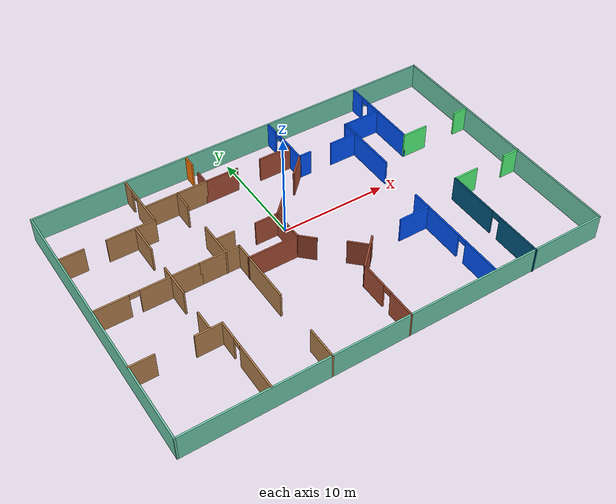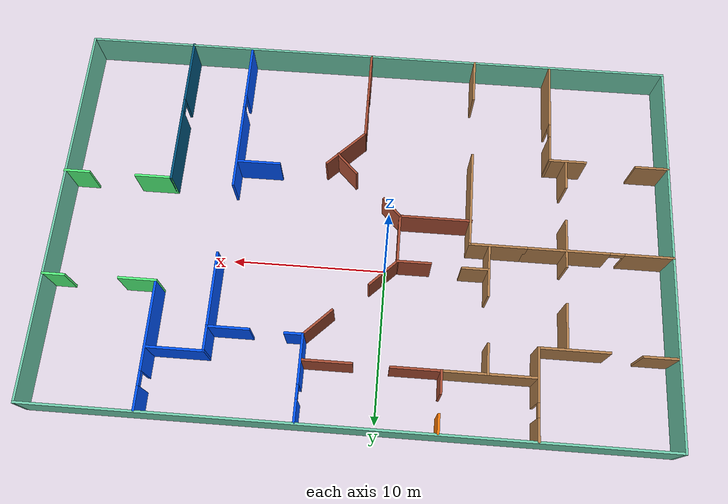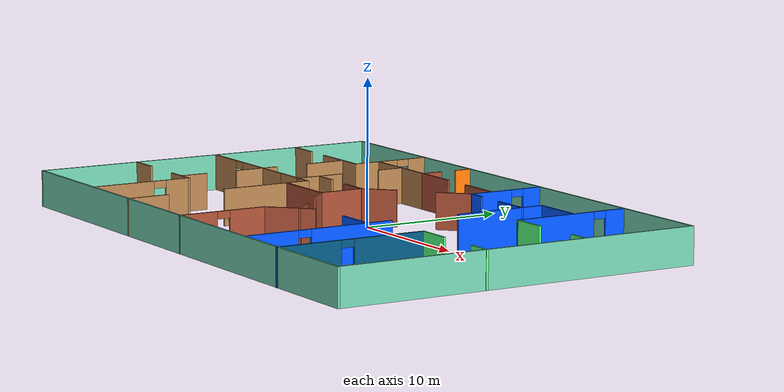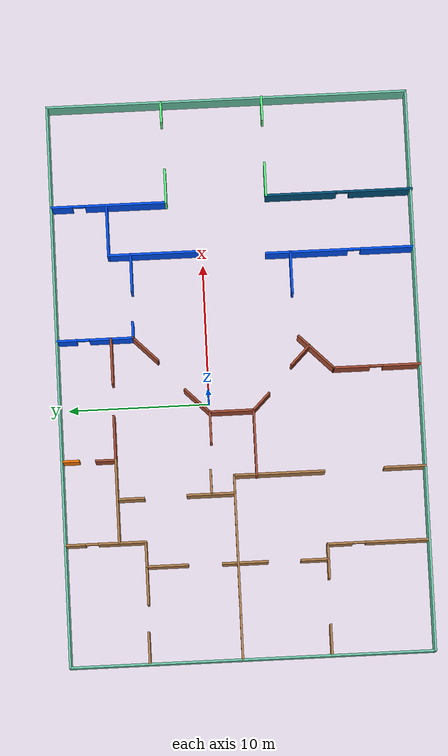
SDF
<?xml version='1.0'?>
<sdf version='1.6'>
  <model name='Building'>
    <pose frame=''>1.66654 -2.25263 0 0 -0 0</pose>
    <link name='Wall_1'>
      <collision name='Wall_1_Collision'>
        <geometry>
          <box>
            <size>40 0.15 2.5</size>
          </box>
        </geometry>
        <pose frame=''>0 0 1.25 0 -0 0</pose>
      </collision>
      <visual name='Wall_1_Visual'>
        <pose frame=''>0 0 1.25 0 -0 0</pose>
        <geometry>
          <box>
            <size>40 0.15 2.5</size>
          </box>
        </geometry>
        <material>
          <script>
            <uri>file://media/materials/scripts/gazebo.material</uri>
            <name>Gazebo/Grey</name>
          </script>
          <ambient>0.435294 0.796078 0.67451 1</ambient>
        </material>
        <meta>
          <layer>0</layer>
        </meta>
      </visual>
      <pose frame=''>-0.022022 12.8298 0 0 -0 0</pose>
    </link>
    <link name='Wall_15'>
      <pose frame=''>-12.1346 -9.16282 0 0 -0 1.5708</pose>
      <visual name='Wall_15_Visual_0'>
        <pose frame=''>-1.36925 0 1.25 0 -0 0</pose>
        <geometry>
          <box>
            <size>4.51149 0.15 2.5</size>
          </box>
        </geometry>
        <material>
          <script>
            <uri>file://media/materials/scripts/gazebo.material</uri>
            <name>Gazebo/Wood</name>
          </script>
          <ambient>1 1 1 1</ambient>
        </material>
        <meta>
          <layer>0</layer>
        </meta>
      </visual>
      <collision name='Wall_15_Collision_0'>
        <geometry>
          <box>
            <size>4.51149 0.15 2.5</size>
          </box>
        </geometry>
        <pose frame=''>-1.36925 0 1.25 0 -0 0</pose>
      </collision>
      <visual name='Wall_15_Visual_1'>
        <pose frame=''>2.70575 0 1.25 0 -0 0</pose>
        <geometry>
          <box>
            <size>1.83851 0.15 2.5</size>
          </box>
        </geometry>
        <material>
          <script>
            <uri>file://media/materials/scripts/gazebo.material</uri>
            <name>Gazebo/Wood</name>
          </script>
          <ambient>1 1 1 1</ambient>
        </material>
        <meta>
          <layer>0</layer>
        </meta>
      </visual>
      <collision name='Wall_15_Collision_1'>
        <geometry>
          <box>
            <size>1.83851 0.15 2.5</size>
          </box>
        </geometry>
        <pose frame=''>2.70575 0 1.25 0 -0 0</pose>
      </collision>
      <visual name='Wall_15_Visual_2'>
        <pose frame=''>1.33649 0 2.25 0 -0 0</pose>
        <geometry>
          <box>
            <size>0.9 0.15 0.5</size>
          </box>
        </geometry>
        <material>
          <script>
            <uri>file://media/materials/scripts/gazebo.material</uri>
            <name>Gazebo/Wood</name>
          </script>
          <ambient>1 1 1 1</ambient>
        </material>
        <meta>
          <layer>0</layer>
        </meta>
      </visual>
      <collision name='Wall_15_Collision_2'>
        <geometry>
          <box>
            <size>0.9 0.15 0.5</size>
          </box>
        </geometry>
        <pose frame=''>1.33649 0 2.25 0 -0 0</pose>
      </collision>
    </link>
    <link name='Wall_16'>
      <collision name='Wall_16_Collision'>
        <geometry>
          <box>
            <size>2.5 0.15 2.5</size>
          </box>
        </geometry>
        <pose frame=''>0 0 1.25 0 -0 0</pose>
      </collision>
      <visual name='Wall_16_Visual'>
        <pose frame=''>0 0 1.25 0 -0 0</pose>
        <geometry>
          <box>
            <size>2.5 0.15 2.5</size>
          </box>
        </geometry>
        <material>
          <script>
            <uri>file://media/materials/scripts/gazebo.material</uri>
            <name>Gazebo/Wood</name>
          </script>
          <ambient>1 1 1 1</ambient>
        </material>
        <meta>
          <layer>0</layer>
        </meta>
      </visual>
      <pose frame=''>-13.3096 -5.61282 0 0 -0 3.14159</pose>
    </link>
    <link name='Wall_18'>
      <collision name='Wall_18_Collision'>
        <geometry>
          <box>
            <size>2.25 0.15 2.5</size>
          </box>
        </geometry>
        <pose frame=''>0 0 1.25 0 -0 0</pose>
      </collision>
      <visual name='Wall_18_Visual'>
        <pose frame=''>0 0 1.25 0 -0 0</pose>
        <geometry>
          <box>
            <size>2.25 0.15 2.5</size>
          </box>
        </geometry>
        <material>
          <script>
            <uri>file://media/materials/scripts/gazebo.material</uri>
            <name>Gazebo/Wood</name>
          </script>
          <ambient>1 1 1 1</ambient>
        </material>
        <meta>
          <layer>0</layer>
        </meta>
      </visual>
      <pose frame=''>-18.8793 -5.52715 0 0 -0 0</pose>
    </link>
    <link name='Wall_2'>
      <collision name='Wall_2_Collision'>
        <geometry>
          <box>
            <size>25.75 0.15 2.5</size>
          </box>
        </geometry>
        <pose frame=''>0 0 1.25 0 -0 0</pose>
      </collision>
      <visual name='Wall_2_Visual'>
        <pose frame=''>0 0 1.25 0 -0 0</pose>
        <geometry>
          <box>
            <size>25.75 0.15 2.5</size>
          </box>
        </geometry>
        <material>
          <script>
            <uri>file://media/materials/scripts/gazebo.material</uri>
            <name>Gazebo/Grey</name>
          </script>
          <ambient>0.435294 0.796078 0.67451 1</ambient>
        </material>
        <meta>
          <layer>0</layer>
        </meta>
      </visual>
      <pose frame=''>19.903 0.029824 0 0 0 -1.5708</pose>
    </link>
    <link name='Wall_20'>
      <collision name='Wall_20_Collision'>
        <geometry>
          <box>
            <size>3 0.15 2.5</size>
          </box>
        </geometry>
        <pose frame=''>0 0 1.25 0 -0 0</pose>
      </collision>
      <visual name='Wall_20_Visual'>
        <pose frame=''>0 0 1.25 0 -0 0</pose>
        <geometry>
          <box>
            <size>3 0.15 2.5</size>
          </box>
        </geometry>
        <material>
          <script>
            <uri>file://media/materials/scripts/gazebo.material</uri>
            <name>Gazebo/Wood</name>
          </script>
          <ambient>1 1 1 1</ambient>
        </material>
        <meta>
          <layer>0</layer>
        </meta>
      </visual>
      <pose frame=''>-13.1276 5.72535 0 0 0 -1.5708</pose>
    </link>
    <link name='Wall_22'>
      <collision name='Wall_22_Collision'>
        <geometry>
          <box>
            <size>2 0.15 2.5</size>
          </box>
        </geometry>
        <pose frame=''>0 0 1.25 0 -0 0</pose>
      </collision>
      <visual name='Wall_22_Visual'>
        <pose frame=''>0 0 1.25 0 -0 0</pose>
        <geometry>
          <box>
            <size>2 0.15 2.5</size>
          </box>
        </geometry>
        <material>
          <script>
            <uri>file://media/materials/scripts/gazebo.material</uri>
            <name>Gazebo/Wood</name>
          </script>
          <ambient>1 1 1 1</ambient>
        </material>
        <meta>
          <layer>0</layer>
        </meta>
      </visual>
      <pose frame=''>-13.1876 -4.66182 0 0 -0 1.5708</pose>
    </link>
    <link name='Wall_24'>
      <pose frame=''>-15.2543 0.737272 0 0 -0 0</pose>
      <visual name='Wall_24_Visual_0'>
        <pose frame=''>-3.16583 0 1.25 0 -0 0</pose>
        <geometry>
          <box>
            <size>3.16833 0.15 2.5</size>
          </box>
        </geometry>
        <material>
          <script>
            <uri>file://media/materials/scripts/gazebo.material</uri>
            <name>Gazebo/Wood</name>
          </script>
          <ambient>1 1 1 1</ambient>
        </material>
        <meta>
          <layer>0</layer>
        </meta>
      </visual>
      <collision name='Wall_24_Collision_0'>
        <geometry>
          <box>
            <size>3.16833 0.15 2.5</size>
          </box>
        </geometry>
        <pose frame=''>-3.16583 0 1.25 0 -0 0</pose>
      </collision>
      <visual name='Wall_24_Visual_1'>
        <pose frame=''>2.03417 0 1.25 0 -0 0</pose>
        <geometry>
          <box>
            <size>5.43166 0.15 2.5</size>
          </box>
        </geometry>
        <material>
          <script>
            <uri>file://media/materials/scripts/gazebo.material</uri>
            <name>Gazebo/Wood</name>
          </script>
          <ambient>1 1 1 1</ambient>
        </material>
        <meta>
          <layer>0</layer>
        </meta>
      </visual>
      <collision name='Wall_24_Collision_1'>
        <geometry>
          <box>
            <size>5.43166 0.15 2.5</size>
          </box>
        </geometry>
        <pose frame=''>2.03417 0 1.25 0 -0 0</pose>
      </collision>
      <visual name='Wall_24_Visual_2'>
        <pose frame=''>-1.13166 0 2.25 0 -0 0</pose>
        <geometry>
          <box>
            <size>0.9 0.15 0.5</size>
          </box>
        </geometry>
        <material>
          <script>
            <uri>file://media/materials/scripts/gazebo.material</uri>
            <name>Gazebo/Wood</name>
          </script>
          <ambient>1 1 1 1</ambient>
        </material>
        <meta>
          <layer>0</layer>
        </meta>
      </visual>
      <collision name='Wall_24_Collision_2'>
        <geometry>
          <box>
            <size>0.9 0.15 0.5</size>
          </box>
        </geometry>
        <pose frame=''>-1.13166 0 2.25 0 -0 0</pose>
      </collision>
    </link>
    <link name='Wall_26'>
      <collision name='Wall_26_Collision'>
        <geometry>
          <box>
            <size>3.25 0.15 2.5</size>
          </box>
        </geometry>
        <pose frame=''>0 0 1.25 0 -0 0</pose>
      </collision>
      <visual name='Wall_26_Visual'>
        <pose frame=''>0 0 1.25 0 -0 0</pose>
        <geometry>
          <box>
            <size>3.25 0.15 2.5</size>
          </box>
        </geometry>
        <material>
          <script>
            <uri>file://media/materials/scripts/gazebo.material</uri>
            <name>Gazebo/Wood</name>
          </script>
          <ambient>1 1 1 1</ambient>
        </material>
        <meta>
          <layer>0</layer>
        </meta>
      </visual>
      <pose frame=''>-13.1573 0.242073 0 0 0 -1.5708</pose>
    </link>
    <link name='Wall_29'>
      <pose frame=''>12.8432 -7.65482 0 0 -0 1.5708</pose>
      <visual name='Wall_29_Visual_0'>
        <pose frame=''>-2.98763 0 1.25 0 -0 0</pose>
        <geometry>
          <box>
            <size>4.52474 0.15 2.5</size>
          </box>
        </geometry>
        <material>
          <script>
            <uri>file://media/materials/scripts/gazebo.material</uri>
            <name>Gazebo/Grey</name>
          </script>
          <ambient>0 0.333333 0.498039 1</ambient>
        </material>
        <meta>
          <layer>0</layer>
        </meta>
      </visual>
      <collision name='Wall_29_Collision_0'>
        <geometry>
          <box>
            <size>4.52474 0.15 2.5</size>
          </box>
        </geometry>
        <pose frame=''>-2.98763 0 1.25 0 -0 0</pose>
      </collision>
      <visual name='Wall_29_Visual_1'>
        <pose frame=''>2.71237 0 1.25 0 -0 0</pose>
        <geometry>
          <box>
            <size>5.07526 0.15 2.5</size>
          </box>
        </geometry>
        <material>
          <script>
            <uri>file://media/materials/scripts/gazebo.material</uri>
            <name>Gazebo/Grey</name>
          </script>
          <ambient>0 0.333333 0.498039 1</ambient>
        </material>
        <meta>
          <layer>0</layer>
        </meta>
      </visual>
      <collision name='Wall_29_Collision_1'>
        <geometry>
          <box>
            <size>5.07526 0.15 2.5</size>
          </box>
        </geometry>
        <pose frame=''>2.71237 0 1.25 0 -0 0</pose>
      </collision>
      <visual name='Wall_29_Visual_2'>
        <pose frame=''>-0.275263 0 2.25 0 -0 0</pose>
        <geometry>
          <box>
            <size>0.9 0.15 0.5</size>
          </box>
        </geometry>
        <material>
          <script>
            <uri>file://media/materials/scripts/gazebo.material</uri>
            <name>Gazebo/Grey</name>
          </script>
          <ambient>0 0.333333 0.498039 1</ambient>
        </material>
        <meta>
          <layer>0</layer>
        </meta>
      </visual>
      <collision name='Wall_29_Collision_2'>
        <geometry>
          <box>
            <size>0.9 0.15 0.5</size>
          </box>
        </geometry>
        <pose frame=''>-0.275263 0 2.25 0 -0 0</pose>
      </collision>
    </link>
    <link name='Wall_3'>
      <collision name='Wall_3_Collision'>
        <geometry>
          <box>
            <size>40 0.15 2.5</size>
          </box>
        </geometry>
        <pose frame=''>0 0 1.25 0 -0 0</pose>
      </collision>
      <visual name='Wall_3_Visual'>
        <pose frame=''>0 0 1.25 0 -0 0</pose>
        <geometry>
          <box>
            <size>40 0.15 2.5</size>
          </box>
        </geometry>
        <material>
          <script>
            <uri>file://media/materials/scripts/gazebo.material</uri>
            <name>Gazebo/Grey</name>
          </script>
          <ambient>0.435294 0.796078 0.67451 1</ambient>
        </material>
        <meta>
          <layer>0</layer>
        </meta>
      </visual>
      <pose frame=''>-0.022022 -12.7702 0 0 -0 3.14159</pose>
    </link>
    <link name='Wall_30'>
      <collision name='Wall_30_Collision'>
        <geometry>
          <box>
            <size>2.5 0.15 2.5</size>
          </box>
        </geometry>
        <pose frame=''>0 0 1.25 0 -0 0</pose>
      </collision>
      <visual name='Wall_30_Visual'>
        <pose frame=''>0 0 1.25 0 -0 0</pose>
        <geometry>
          <box>
            <size>2.5 0.15 2.5</size>
          </box>
        </geometry>
        <material>
          <script>
            <uri>file://media/materials/scripts/gazebo.material</uri>
            <name>Gazebo/Grey</name>
          </script>
          <ambient>0.333333 1 0.498039 1</ambient>
        </material>
        <meta>
          <layer>0</layer>
        </meta>
      </visual>
      <pose frame=''>14.0182 -2.47982 0 0 -0 0</pose>
    </link>
    <link name='Wall_32'>
      <collision name='Wall_32_Collision'>
        <geometry>
          <box>
            <size>1.75 0.15 2.5</size>
          </box>
        </geometry>
        <pose frame=''>0 0 1.25 0 -0 0</pose>
      </collision>
      <visual name='Wall_32_Visual'>
        <pose frame=''>0 0 1.25 0 -0 0</pose>
        <geometry>
          <box>
            <size>1.75 0.15 2.5</size>
          </box>
        </geometry>
        <material>
          <script>
            <uri>file://media/materials/scripts/gazebo.material</uri>
            <name>Gazebo/Grey</name>
          </script>
          <ambient>0.333333 1 0.498039 1</ambient>
        </material>
        <meta>
          <layer>0</layer>
        </meta>
      </visual>
      <pose frame=''>19.147 -2.48795 0 0 -0 3.14159</pose>
    </link>
    <link name='Wall_34'>
      <collision name='Wall_34_Collision'>
        <geometry>
          <box>
            <size>1.5 0.15 2.5</size>
          </box>
        </geometry>
        <pose frame=''>0 0 1.25 0 -0 0</pose>
      </collision>
      <visual name='Wall_34_Visual'>
        <pose frame=''>0 0 1.25 0 -0 0</pose>
        <geometry>
          <box>
            <size>1.5 0.15 2.5</size>
          </box>
        </geometry>
        <material>
          <script>
            <uri>file://media/materials/scripts/gazebo.material</uri>
            <name>Gazebo/Grey</name>
          </script>
          <ambient>0.333333 1 0.498039 1</ambient>
        </material>
        <meta>
          <layer>0</layer>
        </meta>
      </visual>
      <pose frame=''>19.2034 4.71614 0 0 -0 3.14159</pose>
    </link>
    <link name='Wall_36'>
      <pose frame=''>12.6743 8.69753 0 0 -0 1.5708</pose>
      <visual name='Wall_36_Visual_0'>
        <pose frame=''>-1.21115 0 1.25 0 -0 0</pose>
        <geometry>
          <box>
            <size>5.8277 0.15 2.5</size>
          </box>
        </geometry>
        <material>
          <script>
            <uri>file://media/materials/scripts/gazebo.material</uri>
            <name>Gazebo/Grey</name>
          </script>
          <ambient>0 0.333333 1 1</ambient>
        </material>
        <meta>
          <layer>0</layer>
        </meta>
      </visual>
      <collision name='Wall_36_Collision_0'>
        <geometry>
          <box>
            <size>5.8277 0.15 2.5</size>
          </box>
        </geometry>
        <pose frame=''>-1.21115 0 1.25 0 -0 0</pose>
      </collision>
      <visual name='Wall_36_Visual_1'>
        <pose frame=''>3.36385 0 1.25 0 -0 0</pose>
        <geometry>
          <box>
            <size>1.52231 0.15 2.5</size>
          </box>
        </geometry>
        <material>
          <script>
            <uri>file://media/materials/scripts/gazebo.material</uri>
            <name>Gazebo/Grey</name>
          </script>
          <ambient>0 0.333333 1 1</ambient>
        </material>
        <meta>
          <layer>0</layer>
        </meta>
      </visual>
      <collision name='Wall_36_Collision_1'>
        <geometry>
          <box>
            <size>1.52231 0.15 2.5</size>
          </box>
        </geometry>
        <pose frame=''>3.36385 0 1.25 0 -0 0</pose>
      </collision>
      <visual name='Wall_36_Visual_2'>
        <pose frame=''>2.1527 0 2.25 0 -0 0</pose>
        <geometry>
          <box>
            <size>0.9 0.15 0.5</size>
          </box>
        </geometry>
        <material>
          <script>
            <uri>file://media/materials/scripts/gazebo.material</uri>
            <name>Gazebo/Grey</name>
          </script>
          <ambient>0 0.333333 1 1</ambient>
        </material>
        <meta>
          <layer>0</layer>
        </meta>
      </visual>
      <collision name='Wall_36_Collision_2'>
        <geometry>
          <box>
            <size>0.9 0.15 0.5</size>
          </box>
        </geometry>
        <pose frame=''>2.1527 0 2.25 0 -0 0</pose>
      </collision>
    </link>
    <link name='Wall_38'>
      <collision name='Wall_38_Collision'>
        <geometry>
          <box>
            <size>2.5 0.15 2.5</size>
          </box>
        </geometry>
        <pose frame=''>0 0 1.25 0 -0 0</pose>
      </collision>
      <visual name='Wall_38_Visual'>
        <pose frame=''>0 0 1.25 0 -0 0</pose>
        <geometry>
          <box>
            <size>2.5 0.15 2.5</size>
          </box>
        </geometry>
        <material>
          <script>
            <uri>file://media/materials/scripts/gazebo.material</uri>
            <name>Gazebo/Grey</name>
          </script>
          <ambient>0.333333 1 0.498039 1</ambient>
        </material>
        <meta>
          <layer>0</layer>
        </meta>
      </visual>
      <pose frame=''>13.8493 4.64753 0 0 -0 0</pose>
    </link>
    <link name='Wall_4'>
      <collision name='Wall_4_Collision'>
        <geometry>
          <box>
            <size>25.75 0.15 2.5</size>
          </box>
        </geometry>
        <pose frame=''>0 0 1.25 0 -0 0</pose>
      </collision>
      <visual name='Wall_4_Visual'>
        <pose frame=''>0 0 1.25 0 -0 0</pose>
        <geometry>
          <box>
            <size>25.75 0.15 2.5</size>
          </box>
        </geometry>
        <material>
          <script>
            <uri>file://media/materials/scripts/gazebo.material</uri>
            <name>Gazebo/Grey</name>
          </script>
          <ambient>0.435294 0.796078 0.67451 1</ambient>
        </material>
        <meta>
          <layer>0</layer>
        </meta>
      </visual>
      <pose frame=''>-19.947 0.029824 0 0 -0 1.5708</pose>
    </link>
    <link name='Wall_40'>
      <collision name='Wall_40_Collision'>
        <geometry>
          <box>
            <size>3.75 0.15 2.5</size>
          </box>
        </geometry>
        <pose frame=''>0 0 1.25 0 -0 0</pose>
      </collision>
      <visual name='Wall_40_Visual'>
        <pose frame=''>0 0 1.25 0 -0 0</pose>
        <geometry>
          <box>
            <size>3.75 0.15 2.5</size>
          </box>
        </geometry>
        <material>
          <script>
            <uri>file://media/materials/scripts/gazebo.material</uri>
            <name>Gazebo/Grey</name>
          </script>
          <ambient>0 0.333333 1 1</ambient>
        </material>
        <meta>
          <layer>0</layer>
        </meta>
      </visual>
      <pose frame=''>10.8525 8.90126 0 0 -0 3.14159</pose>
    </link>
    <link name='Wall_41'>
      <collision name='Wall_41_Collision'>
        <geometry>
          <box>
            <size>6.5 0.15 2.5</size>
          </box>
        </geometry>
        <pose frame=''>0 0 1.25 0 -0 0</pose>
      </collision>
      <visual name='Wall_41_Visual'>
        <pose frame=''>0 0 1.25 0 -0 0</pose>
        <geometry>
          <box>
            <size>6.5 0.15 2.5</size>
          </box>
        </geometry>
        <material>
          <script>
            <uri>file://media/materials/scripts/gazebo.material</uri>
            <name>Gazebo/Grey</name>
          </script>
          <ambient>0 0.333333 1 1</ambient>
        </material>
        <meta>
          <layer>0</layer>
        </meta>
      </visual>
      <pose frame=''>9.05253 5.72626 0 0 0 -1.5708</pose>
    </link>
    <link name='Wall_46'>
      <pose frame=''>8.69095 -7.47844 0 0 -0 1.5708</pose>
      <visual name='Wall_46_Visual_0'>
        <pose frame=''>-3.3871 0 1.25 0 -0 0</pose>
        <geometry>
          <box>
            <size>3.7258 0.15 2.5</size>
          </box>
        </geometry>
        <material>
          <script>
            <uri>file://media/materials/scripts/gazebo.material</uri>
            <name>Gazebo/Grey</name>
          </script>
          <ambient>0 0.333333 1 1</ambient>
        </material>
        <meta>
          <layer>0</layer>
        </meta>
      </visual>
      <collision name='Wall_46_Collision_0'>
        <geometry>
          <box>
            <size>3.7258 0.15 2.5</size>
          </box>
        </geometry>
        <pose frame=''>-3.3871 0 1.25 0 -0 0</pose>
      </collision>
      <visual name='Wall_46_Visual_1'>
        <pose frame=''>2.3129 0 1.25 0 -0 0</pose>
        <geometry>
          <box>
            <size>5.8742 0.15 2.5</size>
          </box>
        </geometry>
        <material>
          <script>
            <uri>file://media/materials/scripts/gazebo.material</uri>
            <name>Gazebo/Grey</name>
          </script>
          <ambient>0 0.333333 1 1</ambient>
        </material>
        <meta>
          <layer>0</layer>
        </meta>
      </visual>
      <collision name='Wall_46_Collision_1'>
        <geometry>
          <box>
            <size>5.8742 0.15 2.5</size>
          </box>
        </geometry>
        <pose frame=''>2.3129 0 1.25 0 -0 0</pose>
      </collision>
      <visual name='Wall_46_Visual_2'>
        <pose frame=''>-1.0742 0 2.25 0 -0 0</pose>
        <geometry>
          <box>
            <size>0.9 0.15 0.5</size>
          </box>
        </geometry>
        <material>
          <script>
            <uri>file://media/materials/scripts/gazebo.material</uri>
            <name>Gazebo/Grey</name>
          </script>
          <ambient>0 0.333333 1 1</ambient>
        </material>
        <meta>
          <layer>0</layer>
        </meta>
      </visual>
      <collision name='Wall_46_Collision_2'>
        <geometry>
          <box>
            <size>0.9 0.15 0.5</size>
          </box>
        </geometry>
        <pose frame=''>-1.0742 0 2.25 0 -0 0</pose>
      </collision>
    </link>
    <link name='Wall_48'>
      <collision name='Wall_48_Collision'>
        <geometry>
          <box>
            <size>6 0.15 2.5</size>
          </box>
        </geometry>
        <pose frame=''>0 0 1.25 0 -0 0</pose>
      </collision>
      <visual name='Wall_48_Visual'>
        <pose frame=''>0 0 1.25 0 -0 0</pose>
        <geometry>
          <box>
            <size>6 0.15 2.5</size>
          </box>
        </geometry>
        <material>
          <script>
            <uri>file://media/materials/scripts/gazebo.material</uri>
            <name>Gazebo/Wood</name>
          </script>
          <ambient>1 1 1 1</ambient>
        </material>
        <meta>
          <layer>0</layer>
        </meta>
      </visual>
      <pose frame=''>-8.43698 9.03275 0 0 -0 0</pose>
    </link>
    <link name='Wall_54'>
      <collision name='Wall_54_Collision'>
        <geometry>
          <box>
            <size>3.75 0.15 2.5</size>
          </box>
        </geometry>
        <pose frame=''>0 0 1.25 0 -0 0</pose>
      </collision>
      <visual name='Wall_54_Visual'>
        <pose frame=''>0 0 1.25 0 -0 0</pose>
        <geometry>
          <box>
            <size>3.75 0.15 2.5</size>
          </box>
        </geometry>
        <material>
          <script>
            <uri>file://media/materials/scripts/gazebo.material</uri>
            <name>Gazebo/Wood</name>
          </script>
          <ambient>1 1 1 1</ambient>
        </material>
        <meta>
          <layer>0</layer>
        </meta>
      </visual>
      <pose frame=''>-8.77934 0.737272 0 0 -0 0</pose>
    </link>
    <link name='Wall_55'>
      <collision name='Wall_55_Collision'>
        <geometry>
          <box>
            <size>6.5 0.15 2.5</size>
          </box>
        </geometry>
        <pose frame=''>0 0 1.25 0 -0 0</pose>
      </collision>
      <visual name='Wall_55_Visual'>
        <pose frame=''>0 0 1.25 0 -0 0</pose>
        <geometry>
          <box>
            <size>6.5 0.15 2.5</size>
          </box>
        </geometry>
        <material>
          <script>
            <uri>file://media/materials/scripts/gazebo.material</uri>
            <name>Gazebo/Wood</name>
          </script>
          <ambient>1 1 1 1</ambient>
        </material>
        <meta>
          <layer>0</layer>
        </meta>
      </visual>
      <pose frame=''>-6.97934 -2.43773 0 0 0 -1.5708</pose>
    </link>
    <link name='Wall_57'>
      <collision name='Wall_57_Collision'>
        <geometry>
          <box>
            <size>3 0.15 2.5</size>
          </box>
        </geometry>
        <pose frame=''>0 0 1.25 0 -0 0</pose>
      </collision>
      <visual name='Wall_57_Visual'>
        <pose frame=''>0 0 1.25 0 -0 0</pose>
        <geometry>
          <box>
            <size>3 0.15 2.5</size>
          </box>
        </geometry>
        <material>
          <script>
            <uri>file://media/materials/scripts/gazebo.material</uri>
            <name>Gazebo/Wood</name>
          </script>
          <ambient>1 1 1 1</ambient>
        </material>
        <meta>
          <layer>0</layer>
        </meta>
      </visual>
      <pose frame=''>-6.93144 -11.3458 0 0 -0 1.5708</pose>
    </link>
    <link name='Wall_59'>
      <collision name='Wall_59_Collision'>
        <geometry>
          <box>
            <size>4.75 0.15 2.5</size>
          </box>
        </geometry>
        <pose frame=''>0 0 1.25 0 -0 0</pose>
      </collision>
      <visual name='Wall_59_Visual'>
        <pose frame=''>0 0 1.25 0 -0 0</pose>
        <geometry>
          <box>
            <size>4.75 0.15 2.5</size>
          </box>
        </geometry>
        <material>
          <script>
            <uri>file://media/materials/scripts/gazebo.material</uri>
            <name>Gazebo/Bricks</name>
          </script>
          <ambient>1 1 1 1</ambient>
        </material>
        <meta>
          <layer>0</layer>
        </meta>
      </visual>
      <pose frame=''>-4.72167 -0.861079 0 0 -0 0</pose>
    </link>
    <link name='Wall_6'>
      <collision name='Wall_6_Collision'>
        <geometry>
          <box>
            <size>2.25 0.15 2.5</size>
          </box>
        </geometry>
        <pose frame=''>0 0 1.25 0 -0 0</pose>
      </collision>
      <visual name='Wall_6_Visual'>
        <pose frame=''>0 0 1.25 0 -0 0</pose>
        <geometry>
          <box>
            <size>2.25 0.15 2.5</size>
          </box>
        </geometry>
        <material>
          <script>
            <uri>file://media/materials/scripts/gazebo.material</uri>
            <name>Gazebo/Wood</name>
          </script>
          <ambient>1 1 1 1</ambient>
        </material>
        <meta>
          <layer>0</layer>
        </meta>
      </visual>
      <pose frame=''>-18.7981 7.25334 0 0 -0 0</pose>
    </link>
    <link name='Wall_61'>
      <pose frame=''>0.286548 -9.72076 0 0 -0 1.5708</pose>
      <visual name='Wall_61_Visual_0'>
        <pose frame=''>-1.77411 0 1.25 0 -0 0</pose>
        <geometry>
          <box>
            <size>2.70178 0.15 2.5</size>
          </box>
        </geometry>
        <material>
          <script>
            <uri>file://media/materials/scripts/gazebo.material</uri>
            <name>Gazebo/Bricks</name>
          </script>
          <ambient>1 1 1 1</ambient>
        </material>
        <meta>
          <layer>0</layer>
        </meta>
      </visual>
      <collision name='Wall_61_Collision_0'>
        <geometry>
          <box>
            <size>2.70178 0.15 2.5</size>
          </box>
        </geometry>
        <pose frame=''>-1.77411 0 1.25 0 -0 0</pose>
      </collision>
      <visual name='Wall_61_Visual_1'>
        <pose frame=''>1.80089 0 1.25 0 -0 0</pose>
        <geometry>
          <box>
            <size>2.64822 0.15 2.5</size>
          </box>
        </geometry>
        <material>
          <script>
            <uri>file://media/materials/scripts/gazebo.material</uri>
            <name>Gazebo/Bricks</name>
          </script>
          <ambient>1 1 1 1</ambient>
        </material>
        <meta>
          <layer>0</layer>
        </meta>
      </visual>
      <collision name='Wall_61_Collision_1'>
        <geometry>
          <box>
            <size>2.64822 0.15 2.5</size>
          </box>
        </geometry>
        <pose frame=''>1.80089 0 1.25 0 -0 0</pose>
      </collision>
      <visual name='Wall_61_Visual_2'>
        <pose frame=''>0.026779 0 2.25 0 -0 0</pose>
        <geometry>
          <box>
            <size>0.9 0.15 0.5</size>
          </box>
        </geometry>
        <material>
          <script>
            <uri>file://media/materials/scripts/gazebo.material</uri>
            <name>Gazebo/Bricks</name>
          </script>
          <ambient>1 1 1 1</ambient>
        </material>
        <meta>
          <layer>0</layer>
        </meta>
      </visual>
      <collision name='Wall_61_Collision_2'>
        <geometry>
          <box>
            <size>0.9 0.15 0.5</size>
          </box>
        </geometry>
        <pose frame=''>0.026779 0 2.25 0 -0 0</pose>
      </collision>
    </link>
    <link name='Wall_63'>
      <collision name='Wall_63_Collision'>
        <geometry>
          <box>
            <size>3 0.15 2.5</size>
          </box>
        </geometry>
        <pose frame=''>0 0 1.25 0 -0 0</pose>
      </collision>
      <visual name='Wall_63_Visual'>
        <pose frame=''>0 0 1.25 0 -0 0</pose>
        <geometry>
          <box>
            <size>3 0.15 2.5</size>
          </box>
        </geometry>
        <material>
          <script>
            <uri>file://media/materials/scripts/gazebo.material</uri>
            <name>Gazebo/Grey</name>
          </script>
          <ambient>0 0.333333 1 1</ambient>
        </material>
        <meta>
          <layer>0</layer>
        </meta>
      </visual>
      <pose frame=''>7.25246 -4.01895 0 0 -0 3.14159</pose>
    </link>
    <link name='Wall_66'>
      <collision name='Wall_66_Collision'>
        <geometry>
          <box>
            <size>3.5 0.15 2.5</size>
          </box>
        </geometry>
        <pose frame=''>0 0 1.25 0 -0 0</pose>
      </collision>
      <visual name='Wall_66_Visual'>
        <pose frame=''>0 0 1.25 0 -0 0</pose>
        <geometry>
          <box>
            <size>3.5 0.15 2.5</size>
          </box>
        </geometry>
        <material>
          <script>
            <uri>file://media/materials/scripts/gazebo.material</uri>
            <name>Gazebo/Bricks</name>
          </script>
          <ambient>1 1 1 1</ambient>
        </material>
        <meta>
          <layer>0</layer>
        </meta>
      </visual>
      <pose frame=''>1.47095 -5.48636 0 0 -0 0.785398</pose>
    </link>
    <link name='Wall_68'>
      <collision name='Wall_68_Collision'>
        <geometry>
          <box>
            <size>1.75 0.15 2.5</size>
          </box>
        </geometry>
        <pose frame=''>0 0 1.25 0 -0 0</pose>
      </collision>
      <visual name='Wall_68_Visual'>
        <pose frame=''>0 0 1.25 0 -0 0</pose>
        <geometry>
          <box>
            <size>1.75 0.15 2.5</size>
          </box>
        </geometry>
        <material>
          <script>
            <uri>file://media/materials/scripts/gazebo.material</uri>
            <name>Gazebo/Bricks</name>
          </script>
          <ambient>1 1 1 1</ambient>
        </material>
        <meta>
          <layer>0</layer>
        </meta>
      </visual>
      <pose frame=''>-1.85598 -1.42676 0 0 0 -0.785398</pose>
    </link>
    <link name='Wall_70'>
      <collision name='Wall_70_Collision'>
        <geometry>
          <box>
            <size>2 0.15 2.5</size>
          </box>
        </geometry>
        <pose frame=''>0 0 1.25 0 -0 0</pose>
      </collision>
      <visual name='Wall_70_Visual'>
        <pose frame=''>0 0 1.25 0 -0 0</pose>
        <geometry>
          <box>
            <size>2 0.15 2.5</size>
          </box>
        </geometry>
        <material>
          <script>
            <uri>file://media/materials/scripts/gazebo.material</uri>
            <name>Gazebo/Bricks</name>
          </script>
          <ambient>1 1 1 1</ambient>
        </material>
        <meta>
          <layer>0</layer>
        </meta>
      </visual>
      <pose frame=''>1.31835 -4.36146 0 0 -0 2.35619</pose>
    </link>
    <link name='Wall_72'>
      <collision name='Wall_72_Collision'>
        <geometry>
          <box>
            <size>3.5 0.15 2.5</size>
          </box>
        </geometry>
        <pose frame=''>0 0 1.25 0 -0 0</pose>
      </collision>
      <visual name='Wall_72_Visual'>
        <pose frame=''>0 0 1.25 0 -0 0</pose>
        <geometry>
          <box>
            <size>3.5 0.15 2.5</size>
          </box>
        </geometry>
        <material>
          <script>
            <uri>file://media/materials/scripts/gazebo.material</uri>
            <name>Gazebo/Wood</name>
          </script>
          <ambient>1 1 1 1</ambient>
        </material>
        <meta>
          <layer>0</layer>
        </meta>
      </visual>
      <pose frame=''>-8.23539 2.39683 0 0 -0 1.5708</pose>
    </link>
    <link name='Wall_74'>
      <collision name='Wall_74_Collision'>
        <geometry>
          <box>
            <size>2 0.15 2.5</size>
          </box>
        </geometry>
        <pose frame=''>0 0 1.25 0 -0 0</pose>
      </collision>
      <visual name='Wall_74_Visual'>
        <pose frame=''>0 0 1.25 0 -0 0</pose>
        <geometry>
          <box>
            <size>2 0.15 2.5</size>
          </box>
        </geometry>
        <material>
          <script>
            <uri>file://media/materials/scripts/gazebo.material</uri>
            <name>Gazebo/Wood</name>
          </script>
          <ambient>1 1 1 1</ambient>
        </material>
        <meta>
          <layer>0</layer>
        </meta>
      </visual>
      <pose frame=''>-8.29471 8.10224 0 0 0 -1.5708</pose>
    </link>
    <link name='Wall_76'>
      <collision name='Wall_76_Collision'>
        <geometry>
          <box>
            <size>3.25 0.15 2.5</size>
          </box>
        </geometry>
        <pose frame=''>0 0 1.25 0 -0 0</pose>
      </collision>
      <visual name='Wall_76_Visual'>
        <pose frame=''>0 0 1.25 0 -0 0</pose>
        <geometry>
          <box>
            <size>3.25 0.15 2.5</size>
          </box>
        </geometry>
        <material>
          <script>
            <uri>file://media/materials/scripts/gazebo.material</uri>
            <name>Gazebo/Bricks</name>
          </script>
          <ambient>1 1 1 1</ambient>
        </material>
        <meta>
          <layer>0</layer>
        </meta>
      </visual>
      <pose frame=''>-2.42167 0.688921 0 0 -0 1.5708</pose>
    </link>
    <link name='Wall_77'>
      <collision name='Wall_77_Collision'>
        <geometry>
          <box>
            <size>2.25 0.15 2.5</size>
          </box>
        </geometry>
        <pose frame=''>0 0 1.25 0 -0 0</pose>
      </collision>
      <visual name='Wall_77_Visual'>
        <pose frame=''>0 0 1.25 0 -0 0</pose>
        <geometry>
          <box>
            <size>2.25 0.15 2.5</size>
          </box>
        </geometry>
        <material>
          <script>
            <uri>file://media/materials/scripts/gazebo.material</uri>
            <name>Gazebo/Bricks</name>
          </script>
          <ambient>1 1 1 1</ambient>
        </material>
        <meta>
          <layer>0</layer>
        </meta>
      </visual>
      <pose frame=''>-3.47167 2.23892 0 0 -0 3.14159</pose>
    </link>
    <link name='Wall_79'>
      <collision name='Wall_79_Collision'>
        <geometry>
          <box>
            <size>1.75 0.15 2.5</size>
          </box>
        </geometry>
        <pose frame=''>0 0 1.25 0 -0 0</pose>
      </collision>
      <visual name='Wall_79_Visual'>
        <pose frame=''>0 0 1.25 0 -0 0</pose>
        <geometry>
          <box>
            <size>1.75 0.15 2.5</size>
          </box>
        </geometry>
        <material>
          <script>
            <uri>file://media/materials/scripts/gazebo.material</uri>
            <name>Gazebo/Wood</name>
          </script>
          <ambient>1 1 1 1</ambient>
        </material>
        <meta>
          <layer>0</layer>
        </meta>
      </visual>
      <pose frame=''>-7.36493 2.38138 0 0 -0 0</pose>
    </link>
    <link name='Wall_8'>
      <collision name='Wall_8_Collision'>
        <geometry>
          <box>
            <size>4.5 0.15 2.5</size>
          </box>
        </geometry>
        <pose frame=''>0 0 1.25 0 -0 0</pose>
      </collision>
      <visual name='Wall_8_Visual'>
        <pose frame=''>0 0 1.25 0 -0 0</pose>
        <geometry>
          <box>
            <size>4.5 0.15 2.5</size>
          </box>
        </geometry>
        <material>
          <script>
            <uri>file://media/materials/scripts/gazebo.material</uri>
            <name>Gazebo/Wood</name>
          </script>
          <ambient>1 1 1 1</ambient>
        </material>
        <meta>
          <layer>0</layer>
        </meta>
      </visual>
      <pose frame=''>-13.5469 7.17399 0 0 -0 0</pose>
    </link>
    <link name='Wall_81'>
      <collision name='Wall_81_Collision'>
        <geometry>
          <box>
            <size>1.5 0.15 2.5</size>
          </box>
        </geometry>
        <pose frame=''>0 0 1.25 0 -0 0</pose>
      </collision>
      <visual name='Wall_81_Visual'>
        <pose frame=''>0 0 1.25 0 -0 0</pose>
        <geometry>
          <box>
            <size>1.5 0.15 2.5</size>
          </box>
        </geometry>
        <material>
          <script>
            <uri>file://media/materials/scripts/gazebo.material</uri>
            <name>Gazebo/Bricks</name>
          </script>
          <ambient>1 1 1 1</ambient>
        </material>
        <meta>
          <layer>0</layer>
        </meta>
      </visual>
      <pose frame=''>-5.51198 9.70776 0 0 -0 1.5708</pose>
    </link>
    <link name='Wall_85'>
      <collision name='Wall_85_Collision'>
        <geometry>
          <box>
            <size>1.25 0.15 2.5</size>
          </box>
        </geometry>
        <pose frame=''>0 0 1.25 0 -0 0</pose>
      </collision>
      <visual name='Wall_85_Visual'>
        <pose frame=''>0 0 1.25 0 -0 0</pose>
        <geometry>
          <box>
            <size>1.25 0.15 2.5</size>
          </box>
        </geometry>
        <material>
          <script>
            <uri>file://media/materials/scripts/gazebo.material</uri>
            <name>Gazebo/Grey</name>
          </script>
          <ambient>0.996078 0.47451 0.0196078 1</ambient>
        </material>
        <meta>
          <layer>0</layer>
        </meta>
      </visual>
      <pose frame=''>-5.45501 12.2092 0 0 0 -1.5708</pose>
    </link>
    <link name='Wall_87'>
      <collision name='Wall_87_Collision'>
        <geometry>
          <box>
            <size>2.75 0.15 2.5</size>
          </box>
        </geometry>
        <pose frame=''>0 0 1.25 0 -0 0</pose>
      </collision>
      <visual name='Wall_87_Visual'>
        <pose frame=''>0 0 1.25 0 -0 0</pose>
        <geometry>
          <box>
            <size>2.75 0.15 2.5</size>
          </box>
        </geometry>
        <material>
          <script>
            <uri>file://media/materials/scripts/gazebo.material</uri>
            <name>Gazebo/Grey</name>
          </script>
          <ambient>0 0.333333 1 1</ambient>
        </material>
        <meta>
          <layer>0</layer>
        </meta>
      </visual>
      <pose frame=''>7.75943 7.34571 0 0 -0 3.14159</pose>
    </link>
    <link name='Wall_89'>
      <pose frame=''>3.09674 10.0842 0 0 0 -1.5708</pose>
      <visual name='Wall_89_Visual_0'>
        <pose frame=''>-2.03489 0 1.25 0 -0 0</pose>
        <geometry>
          <box>
            <size>1.43023 0.15 2.5</size>
          </box>
        </geometry>
        <material>
          <script>
            <uri>file://media/materials/scripts/gazebo.material</uri>
            <name>Gazebo/Grey</name>
          </script>
          <ambient>0 0.333333 1 1</ambient>
        </material>
        <meta>
          <layer>0</layer>
        </meta>
      </visual>
      <collision name='Wall_89_Collision_0'>
        <geometry>
          <box>
            <size>1.43023 0.15 2.5</size>
          </box>
        </geometry>
        <pose frame=''>-2.03489 0 1.25 0 -0 0</pose>
      </collision>
      <visual name='Wall_89_Visual_1'>
        <pose frame=''>1.16511 0 1.25 0 -0 0</pose>
        <geometry>
          <box>
            <size>3.16977 0.15 2.5</size>
          </box>
        </geometry>
        <material>
          <script>
            <uri>file://media/materials/scripts/gazebo.material</uri>
            <name>Gazebo/Grey</name>
          </script>
          <ambient>0 0.333333 1 1</ambient>
        </material>
        <meta>
          <layer>0</layer>
        </meta>
      </visual>
      <collision name='Wall_89_Collision_1'>
        <geometry>
          <box>
            <size>3.16977 0.15 2.5</size>
          </box>
        </geometry>
        <pose frame=''>1.16511 0 1.25 0 -0 0</pose>
      </collision>
      <visual name='Wall_89_Visual_2'>
        <pose frame=''>-0.869774 0 2.25 0 -0 0</pose>
        <geometry>
          <box>
            <size>0.9 0.15 0.5</size>
          </box>
        </geometry>
        <material>
          <script>
            <uri>file://media/materials/scripts/gazebo.material</uri>
            <name>Gazebo/Grey</name>
          </script>
          <ambient>0 0.333333 1 1</ambient>
        </material>
        <meta>
          <layer>0</layer>
        </meta>
      </visual>
      <collision name='Wall_89_Collision_2'>
        <geometry>
          <box>
            <size>0.9 0.15 0.5</size>
          </box>
        </geometry>
        <pose frame=''>-0.869774 0 2.25 0 -0 0</pose>
      </collision>
    </link>
    <link name='Wall_9'>
      <pose frame=''>-11.3719 9.97399 0 0 -0 1.5708</pose>
      <visual name='Wall_9_Visual_0'>
        <pose frame=''>-1.1725 0 1.25 0 -0 0</pose>
        <geometry>
          <box>
            <size>3.40499 0.15 2.5</size>
          </box>
        </geometry>
        <material>
          <script>
            <uri>file://media/materials/scripts/gazebo.material</uri>
            <name>Gazebo/Wood</name>
          </script>
          <ambient>1 1 1 1</ambient>
        </material>
        <meta>
          <layer>0</layer>
        </meta>
      </visual>
      <collision name='Wall_9_Collision_0'>
        <geometry>
          <box>
            <size>3.40499 0.15 2.5</size>
          </box>
        </geometry>
        <pose frame=''>-1.1725 0 1.25 0 -0 0</pose>
      </collision>
      <visual name='Wall_9_Visual_1'>
        <pose frame=''>2.1525 0 1.25 0 -0 0</pose>
        <geometry>
          <box>
            <size>1.44501 0.15 2.5</size>
          </box>
        </geometry>
        <material>
          <script>
            <uri>file://media/materials/scripts/gazebo.material</uri>
            <name>Gazebo/Wood</name>
          </script>
          <ambient>1 1 1 1</ambient>
        </material>
        <meta>
          <layer>0</layer>
        </meta>
      </visual>
      <collision name='Wall_9_Collision_1'>
        <geometry>
          <box>
            <size>1.44501 0.15 2.5</size>
          </box>
        </geometry>
        <pose frame=''>2.1525 0 1.25 0 -0 0</pose>
      </collision>
      <visual name='Wall_9_Visual_2'>
        <pose frame=''>0.979991 0 2.25 0 -0 0</pose>
        <geometry>
          <box>
            <size>0.9 0.15 0.5</size>
          </box>
        </geometry>
        <material>
          <script>
            <uri>file://media/materials/scripts/gazebo.material</uri>
            <name>Gazebo/Wood</name>
          </script>
          <ambient>1 1 1 1</ambient>
        </material>
        <meta>
          <layer>0</layer>
        </meta>
      </visual>
      <collision name='Wall_9_Collision_2'>
        <geometry>
          <box>
            <size>0.9 0.15 0.5</size>
          </box>
        </geometry>
        <pose frame=''>0.979991 0 2.25 0 -0 0</pose>
      </collision>
    </link>
    <link name='Wall_90'>
      <collision name='Wall_90_Collision'>
        <geometry>
          <box>
            <size>1.25 0.15 2.5</size>
          </box>
        </geometry>
        <pose frame=''>0 0 1.25 0 -0 0</pose>
      </collision>
      <visual name='Wall_90_Visual'>
        <pose frame=''>0 0 1.25 0 -0 0</pose>
        <geometry>
          <box>
            <size>1.25 0.15 2.5</size>
          </box>
        </geometry>
        <material>
          <script>
            <uri>file://media/materials/scripts/gazebo.material</uri>
            <name>Gazebo/Grey</name>
          </script>
          <ambient>0 0.333333 1 1</ambient>
        </material>
        <meta>
          <layer>0</layer>
        </meta>
      </visual>
      <pose frame=''>3.64674 7.40921 0 0 -0 0</pose>
    </link>
    <link name='Wall_92'>
      <collision name='Wall_92_Collision'>
        <geometry>
          <box>
            <size>3.25 0.15 2.5</size>
          </box>
        </geometry>
        <pose frame=''>0 0 1.25 0 -0 0</pose>
      </collision>
      <visual name='Wall_92_Visual'>
        <pose frame=''>0 0 1.25 0 -0 0</pose>
        <geometry>
          <box>
            <size>3.25 0.15 2.5</size>
          </box>
        </geometry>
        <material>
          <script>
            <uri>file://media/materials/scripts/gazebo.material</uri>
            <name>Gazebo/Bricks</name>
          </script>
          <ambient>1 1 1 1</ambient>
        </material>
        <meta>
          <layer>0</layer>
        </meta>
      </visual>
      <pose frame=''>-3.96198 9.03275 0 0 -0 0</pose>
    </link>
    <link name='Wall_94'>
      <collision name='Wall_94_Collision'>
        <geometry>
          <box>
            <size>3.25 0.15 2.5</size>
          </box>
        </geometry>
        <pose frame=''>0 0 1.25 0 -0 0</pose>
      </collision>
      <visual name='Wall_94_Visual'>
        <pose frame=''>0 0 1.25 0 -0 0</pose>
        <geometry>
          <box>
            <size>3.25 0.15 2.5</size>
          </box>
        </geometry>
        <material>
          <script>
            <uri>file://media/materials/scripts/gazebo.material</uri>
            <name>Gazebo/Bricks</name>
          </script>
          <ambient>1 1 1 1</ambient>
        </material>
        <meta>
          <layer>0</layer>
        </meta>
      </visual>
      <pose frame=''>1.50848 8.9933 0 0 -0 0</pose>
    </link>
    <link name='Wall_96'>
      <collision name='Wall_96_Collision'>
        <geometry>
          <box>
            <size>2.5 0.15 2.5</size>
          </box>
        </geometry>
        <pose frame=''>0 0 1.25 0 -0 0</pose>
      </collision>
      <visual name='Wall_96_Visual'>
        <pose frame=''>0 0 1.25 0 -0 0</pose>
        <geometry>
          <box>
            <size>2.5 0.15 2.5</size>
          </box>
        </geometry>
        <material>
          <script>
            <uri>file://media/materials/scripts/gazebo.material</uri>
            <name>Gazebo/Bricks</name>
          </script>
          <ambient>1 1 1 1</ambient>
        </material>
        <meta>
          <layer>0</layer>
        </meta>
      </visual>
      <pose frame=''>2.26589 6.57836 0 0 0 -2.35619</pose>
    </link>
    <link name='Wall_98'>
      <collision name='Wall_98_Collision'>
        <geometry>
          <box>
            <size>2.5 0.15 2.5</size>
          </box>
        </geometry>
        <pose frame=''>0 0 1.25 0 -0 0</pose>
      </collision>
      <visual name='Wall_98_Visual'>
        <pose frame=''>0 0 1.25 0 -0 0</pose>
        <geometry>
          <box>
            <size>2.5 0.15 2.5</size>
          </box>
        </geometry>
        <material>
          <script>
            <uri>file://media/materials/scripts/gazebo.material</uri>
            <name>Gazebo/Bricks</name>
          </script>
          <ambient>1 1 1 1</ambient>
        </material>
        <meta>
          <layer>0</layer>
        </meta>
      </visual>
      <pose frame=''>-1.59082 3.06977 0 0 -0 0.785398</pose>
    </link>
    <static>1</static>
  </model>
</sdf>
